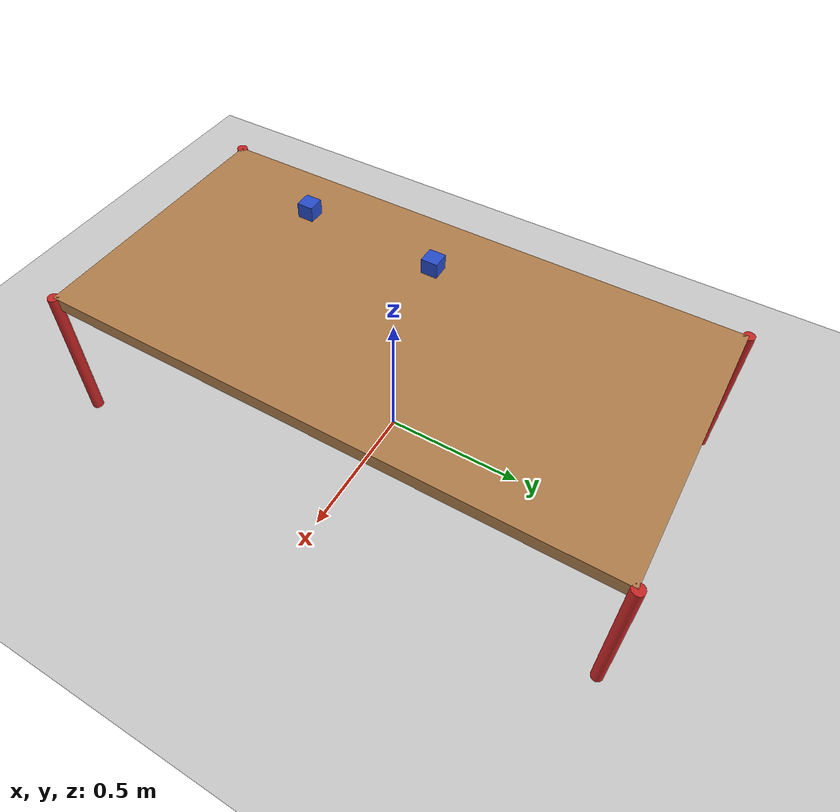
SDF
<sdf version="1.4">
 <world name="default">
  <model name="ground_plane">
   <static>1</static>
   <link name="link">
    <collision name="collision">
     <geometry><plane><normal>0 0 1</normal><size>100 100</size></plane></geometry>
     <surface><friction><ode><mu>100</mu><mu2>50</mu2></ode></friction></surface>
    </collision>
    <visual name="visual">
     <cast_shadows>0</cast_shadows>
     <geometry><plane><normal>0 0 1</normal><size>100 100</size></plane></geometry>
     <material>
      <script><uri>file://media/materials/scripts/gazebo.material</uri><name>Gazebo/Grey</name></script>
     </material>
    </visual>
    <velocity_decay><linear>0</linear><angular>0</angular></velocity_decay>
   </link>
  </model>
  <light name="sun" type="directional">
   <pose>0 0 10 0 -0 0</pose>
   <diffuse>0.8 0.8 0.8 1</diffuse>
   <specular>0.2 0.2 0.2 1</specular>
   <attenuation>
    <range>1000</range>
    <constant>0.9</constant>
    <linear>0.01</linear>
    <quadratic>0.001</quadratic>
   </attenuation>
   <direction>-0.5 0.1 -0.9</direction>
  </light>
  <world name="default">
   <light name="sun" type="directional">
    <pose>0 0 10 0 -0 0</pose>
    <diffuse>0.8 0.8 0.8 1</diffuse>
    <specular>0.2 0.2 0.2 1</specular>
    <attenuation>
     <range>1000</range>
     <constant>0.9</constant>
     <linear>0.01</linear>
     <quadratic>0.001</quadratic>
    </attenuation>
    <direction>-0.5 0.1 -0.9</direction>
   </light>
   <physics type="ode">
    <max_step_size>0.001</max_step_size>
    <real_time_factor>1</real_time_factor>
    <real_time_update_rate>1000</real_time_update_rate>
    <gravity>0 0 -9.8</gravity>
   </physics>
   <scene><ambient>0.4 0.4 0.4 1</ambient><background>0.7 0.7 0.7 1</background><shadows>1</shadows></scene>
   <spherical_coordinates>
    <surface_model>EARTH_WGS84</surface_model>
    <latitude_deg>0</latitude_deg>
    <longitude_deg>0</longitude_deg>
    <elevation>0</elevation>
    <heading_deg>0</heading_deg>
   </spherical_coordinates>
   <model name="table2">
    <link name="table_top_link">
     <inertial>
      <pose>0 0 0.325 0 -0 0</pose>
      <mass>5</mass>
      <inertia><ixx>5.45</ixx><ixy>0</ixy><ixz>0</ixz><iyy>2.45</iyy><iyz>0</iyz><izz>6.04</izz></inertia>
     </inertial>
     <collision name="table_top_link_collision">
      <pose>0 0 0.525 0 -0 0</pose>
      <geometry><box><size>1 2 0.05</size></box></geometry>
      <surface>
       <contact><ode><kp>1e+06</kp><kd>1</kd></ode></contact>
       <friction><ode><mu>50</mu><mu2>50</mu2></ode></friction>
      </surface>
     </collision>
     <collision name="table_top_link_collision_leg1_link">
      <pose>0.5 1 0.275 0 -0 0</pose>
      <geometry><cylinder><length>0.55</length><radius>0.02</radius></cylinder></geometry>
      <surface>
       <contact><ode><kp>1e+06</kp><kd>1</kd></ode></contact>
       <friction><ode><mu>50</mu><mu2>50</mu2></ode></friction>
      </surface>
      <surface>
       <contact><ode><kp>1e+07</kp><kd>1</kd></ode></contact>
       <friction><ode><mu>1000</mu><mu2>1000</mu2></ode></friction>
      </surface>
     </collision>
     <collision name="table_top_link_collision_leg2_link">
      <pose>-0.5 1 0.275 0 -0 0</pose>
      <geometry><cylinder><length>0.55</length><radius>0.02</radius></cylinder></geometry>
      <surface>
       <contact><ode><kp>1e+06</kp><kd>1</kd></ode></contact>
       <friction><ode><mu>50</mu><mu2>50</mu2></ode></friction>
      </surface>
      <surface>
       <contact><ode><kp>1e+07</kp><kd>1</kd></ode></contact>
       <friction><ode><mu>1000</mu><mu2>1000</mu2></ode></friction>
      </surface>
     </collision>
     <collision name="table_top_link_collision_leg3_link">
      <pose>0.5 -1 0.275 0 -0 0</pose>
      <geometry><cylinder><length>0.55</length><radius>0.02</radius></cylinder></geometry>
      <surface>
       <contact><ode><kp>1e+06</kp><kd>1</kd></ode></contact>
       <friction><ode><mu>50</mu><mu2>50</mu2></ode></friction>
      </surface>
      <surface>
       <contact><ode><kp>1e+07</kp><kd>1</kd></ode></contact>
       <friction><ode><mu>1000</mu><mu2>1000</mu2></ode></friction>
      </surface>
     </collision>
     <collision name="table_top_link_collision_leg4_link">
      <pose>-0.5 -1 0.275 0 -0 0</pose>
      <geometry><cylinder><length>0.55</length><radius>0.02</radius></cylinder></geometry>
      <surface>
       <contact><ode><kp>1e+06</kp><kd>1</kd></ode></contact>
       <friction><ode><mu>50</mu><mu2>50</mu2></ode></friction>
      </surface>
      <surface>
       <contact><ode><kp>1e+07</kp><kd>1</kd></ode></contact>
       <friction><ode><mu>1000</mu><mu2>1000</mu2></ode></friction>
      </surface>
     </collision>
     <visual name="table_top_link_visual">
      <pose>0 0 0.525 0 -0 0</pose>
      <geometry><box><size>1 2 0.05</size></box></geometry>
      <material><script><name>Gazebo/Wood</name><uri>__default__</uri></script></material>
     </visual>
     <visual name="table_top_link_visual_leg1_link">
      <pose>0.5 1 0.275 0 -0 0</pose>
      <geometry><cylinder><length>0.55</length><radius>0.02</radius></cylinder></geometry>
      <material><script><name>Gazebo/Red</name><uri>__default__</uri></script></material>
     </visual>
     <visual name="table_top_link_visual_leg2_link">
      <pose>-0.5 1 0.275 0 -0 0</pose>
      <geometry><cylinder><length>0.55</length><radius>0.02</radius></cylinder></geometry>
      <material><script><name>Gazebo/Red</name><uri>__default__</uri></script></material>
     </visual>
     <visual name="table_top_link_visual_leg3_link">
      <pose>0.5 -1 0.275 0 -0 0</pose>
      <geometry><cylinder><length>0.55</length><radius>0.02</radius></cylinder></geometry>
      <material><script><name>Gazebo/Red</name><uri>__default__</uri></script></material>
     </visual>
     <visual name="table_top_link_visual_leg4_link">
      <pose>-0.5 -1 0.275 0 -0 0</pose>
      <geometry><cylinder><length>0.55</length><radius>0.02</radius></cylinder></geometry>
      <material><script><name>Gazebo/Red</name><uri>__default__</uri></script></material>
     </visual>
     <velocity_decay><linear>0</linear><angular>0</angular></velocity_decay>
     <velocity_decay><linear>0</linear><angular>0</angular></velocity_decay>
     <velocity_decay><linear>0</linear><angular>0</angular></velocity_decay>
     <velocity_decay><linear>0</linear><angular>0</angular></velocity_decay>
     <velocity_decay><linear>0</linear><angular>0</angular></velocity_decay>
     <self_collide>1</self_collide>
    </link>
    <static>1</static>
   </model>
   <state world_name="default">
    <sim_time>58 795000000</sim_time>
    <real_time>58 943279923</real_time>
    <wall_time>1492483770 322827263</wall_time>
    <model name="table2">
     <link name="table_top_link">
      <velocity>0 0 0 0 -0 0</velocity>
      <acceleration>0 0 0 0 -0 0</acceleration>
      <wrench>0 0 0 0 -0 0</wrench>
     </link>
    </model>
   </state>
   <gui fullscreen="0">
    <camera name="user_camera">
     <pose>4.28367 -4.31262 1.49116 0 0.275643 2.35619</pose>
     <view_controller>orbit</view_controller>
    </camera>
   </gui>
  </world>
  <physics type="ode">
   <max_step_size>0.001</max_step_size>
   <real_time_factor>1</real_time_factor>
   <real_time_update_rate>1000</real_time_update_rate>
   <gravity>0 0 -9.8</gravity>
  </physics>
  <scene><ambient>0.4 0.4 0.4 1</ambient><background>0.7 0.7 0.7 1</background><shadows>1</shadows></scene>
  <spherical_coordinates>
   <surface_model>EARTH_WGS84</surface_model>
   <latitude_deg>0</latitude_deg>
   <longitude_deg>0</longitude_deg>
   <elevation>0</elevation>
   <heading_deg>0</heading_deg>
  </spherical_coordinates>
  <model name="table2">
   <link name="table_top_link">
    <inertial>
     <pose>0 0 0.325 0 -0 0</pose>
     <mass>5</mass>
     <inertia><ixx>5.45</ixx><ixy>0</ixy><ixz>0</ixz><iyy>2.45</iyy><iyz>0</iyz><izz>6.04</izz></inertia>
    </inertial>
    <collision name="table_top_link_collision">
     <pose>0 0 0.525 0 -0 0</pose>
     <geometry><box><size>1 2 0.05</size></box></geometry>
     <surface>
      <contact><ode><kp>1e+06</kp><kd>1</kd></ode></contact>
      <friction><ode><mu>50</mu><mu2>50</mu2></ode></friction>
     </surface>
    </collision>
    <collision name="table_top_link_collision_leg1_link">
     <pose>0.5 1 0.275 0 -0 0</pose>
     <geometry><cylinder><length>0.55</length><radius>0.02</radius></cylinder></geometry>
     <surface>
      <contact><ode><kp>1e+06</kp><kd>1</kd></ode></contact>
      <friction><ode><mu>50</mu><mu2>50</mu2></ode></friction>
     </surface>
     <surface>
      <contact><ode><kp>1e+07</kp><kd>1</kd></ode></contact>
      <friction><ode><mu>1000</mu><mu2>1000</mu2></ode></friction>
     </surface>
    </collision>
    <collision name="table_top_link_collision_leg2_link">
     <pose>-0.5 1 0.275 0 -0 0</pose>
     <geometry><cylinder><length>0.55</length><radius>0.02</radius></cylinder></geometry>
     <surface>
      <contact><ode><kp>1e+06</kp><kd>1</kd></ode></contact>
      <friction><ode><mu>50</mu><mu2>50</mu2></ode></friction>
     </surface>
     <surface>
      <contact><ode><kp>1e+07</kp><kd>1</kd></ode></contact>
      <friction><ode><mu>1000</mu><mu2>1000</mu2></ode></friction>
     </surface>
    </collision>
    <collision name="table_top_link_collision_leg3_link">
     <pose>0.5 -1 0.275 0 -0 0</pose>
     <geometry><cylinder><length>0.55</length><radius>0.02</radius></cylinder></geometry>
     <surface>
      <contact><ode><kp>1e+06</kp><kd>1</kd></ode></contact>
      <friction><ode><mu>50</mu><mu2>50</mu2></ode></friction>
     </surface>
     <surface>
      <contact><ode><kp>1e+07</kp><kd>1</kd></ode></contact>
      <friction><ode><mu>1000</mu><mu2>1000</mu2></ode></friction>
     </surface>
    </collision>
    <collision name="table_top_link_collision_leg4_link">
     <pose>-0.5 -1 0.275 0 -0 0</pose>
     <geometry><cylinder><length>0.55</length><radius>0.02</radius></cylinder></geometry>
     <surface>
      <contact><ode><kp>1e+06</kp><kd>1</kd></ode></contact>
      <friction><ode><mu>50</mu><mu2>50</mu2></ode></friction>
     </surface>
     <surface>
      <contact><ode><kp>1e+07</kp><kd>1</kd></ode></contact>
      <friction><ode><mu>1000</mu><mu2>1000</mu2></ode></friction>
     </surface>
    </collision>
    <visual name="table_top_link_visual">
     <pose>0 0 0.525 0 -0 0</pose>
     <geometry><box><size>1 2 0.05</size></box></geometry>
     <material><script><name>Gazebo/Wood</name><uri>__default__</uri></script></material>
    </visual>
    <visual name="table_top_link_visual_leg1_link">
     <pose>0.5 1 0.275 0 -0 0</pose>
     <geometry><cylinder><length>0.55</length><radius>0.02</radius></cylinder></geometry>
     <material><script><name>Gazebo/Red</name><uri>__default__</uri></script></material>
    </visual>
    <visual name="table_top_link_visual_leg2_link">
     <pose>-0.5 1 0.275 0 -0 0</pose>
     <geometry><cylinder><length>0.55</length><radius>0.02</radius></cylinder></geometry>
     <material><script><name>Gazebo/Red</name><uri>__default__</uri></script></material>
    </visual>
    <visual name="table_top_link_visual_leg3_link">
     <pose>0.5 -1 0.275 0 -0 0</pose>
     <geometry><cylinder><length>0.55</length><radius>0.02</radius></cylinder></geometry>
     <material><script><name>Gazebo/Red</name><uri>__default__</uri></script></material>
    </visual>
    <visual name="table_top_link_visual_leg4_link">
     <pose>-0.5 -1 0.275 0 -0 0</pose>
     <geometry><cylinder><length>0.55</length><radius>0.02</radius></cylinder></geometry>
     <material><script><name>Gazebo/Red</name><uri>__default__</uri></script></material>
    </visual>
    <velocity_decay><linear>0</linear><angular>0</angular></velocity_decay>
    <velocity_decay><linear>0</linear><angular>0</angular></velocity_decay>
    <velocity_decay><linear>0</linear><angular>0</angular></velocity_decay>
    <velocity_decay><linear>0</linear><angular>0</angular></velocity_decay>
    <velocity_decay><linear>0</linear><angular>0</angular></velocity_decay>
    <self_collide>1</self_collide>
   </link>
   <static>1</static>
  </model>
  <model name="demo_cube">
   <static>0</static>
   <link name="link">
    <inertial>
     <mass>0.25</mass>
     <inertia><ixx>0.001</ixx><ixy>0</ixy><ixz>0</ixz><iyy>0.001</iyy><iyz>0</iyz><izz>0.001</izz></inertia>
    </inertial>
    <collision name="collision">
     <geometry><box><size>0.06 0.06 0.06</size></box></geometry>
     <surface>
      <friction><ode><mu>30</mu><mu2>30</mu2></ode></friction>
      <contact><ode><kp>1e+06</kp><kd>100</kd><max_vel>1</max_vel><min_depth>0.002</min_depth></ode></contact>
     </surface>
    </collision>
    <visual name="visual">
     <geometry><box><size>0.06 0.06 0.06</size></box></geometry>
     <material>
      <script><uri>file://media/materials/scripts/gazebo.material</uri><name>Gazebo/Blue</name></script>
     </material>
    </visual>
    <velocity_decay><linear>0</linear><angular>0</angular></velocity_decay>
   </link>
   <pose>-0.291129 -0.526596 0.577999 0 -0 0</pose>
  </model>
  <model name="demo_cube_0">
   <static>0</static>
   <link name="link">
    <inertial>
     <mass>0.25</mass>
     <inertia><ixx>0.001</ixx><ixy>0</ixy><ixz>0</ixz><iyy>0.001</iyy><iyz>0</iyz><izz>0.001</izz></inertia>
    </inertial>
    <collision name="collision">
     <geometry><box><size>0.06 0.06 0.06</size></box></geometry>
     <surface>
      <friction><ode><mu>30</mu><mu2>30</mu2></ode></friction>
      <contact><ode><kp>1e+06</kp><kd>100</kd><max_vel>1</max_vel><min_depth>0.002</min_depth></ode></contact>
     </surface>
    </collision>
    <visual name="visual">
     <geometry><box><size>0.06 0.06 0.06</size></box></geometry>
     <material>
      <script><uri>file://media/materials/scripts/gazebo.material</uri><name>Gazebo/Blue</name></script>
     </material>
    </visual>
    <velocity_decay><linear>0</linear><angular>0</angular></velocity_decay>
   </link>
   <pose>-0.257133 -0 0.577999 0 -0 0</pose>
  </model>
 </world>
</sdf>
